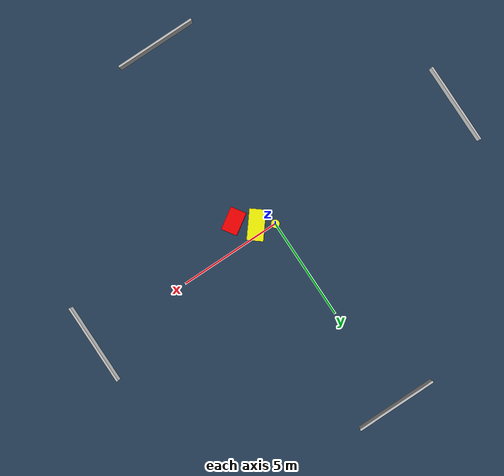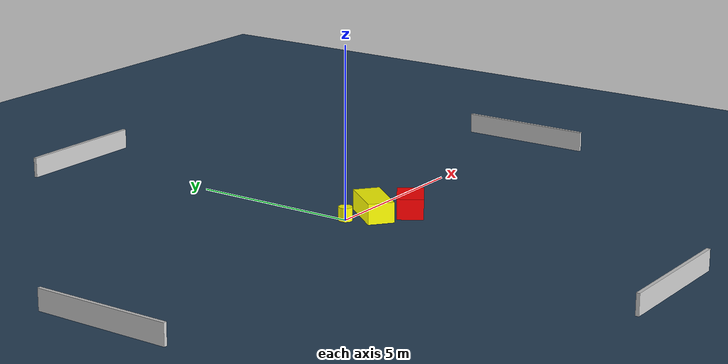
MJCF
<?xml version="1.0" ?>
<mujoco model="generated_environment">
  <option timestep="0.01" integrator="RK4" cone="elliptic"/>
  <default>
    <geom density="1"/>
  </default>
  <asset>
    <texture builtin="gradient" height="3072" name="skybox" rgb1="0.3 0.5 0.7" rgb2="0 0 0" type="skybox" width="512"/>
    <texture builtin="checker" height="300" name="groundplane" rgb1="0.2 0.3 0.4" rgb2="0.1 0.2 0.3" type="2d" width="300"/>
    <material name="groundplane" reflectance="0.2" texrepeat="5 5" texture="groundplane"/>
  </asset>
  <worldbody>
    <light dir="0 0 -1" directional="true" pos="0 0 1.5"/>
    <geom condim="3" friction="0.5 0.005 0.001" material="groundplane" name="floor" pos="0 0 0" size="0 0 0.05" type="plane"/>
    <body name="walls">
      <geom name="wall_1" condim="4" pos="-10.0 0.0 0.3" rgba="0.800000011920929 0.800000011920929 0.800000011920929 1.0" size="0.05 2.0 0.3" type="box"/>
      <geom name="wall_2" condim="4" pos="10.0 0.0 0.3" rgba="0.800000011920929 0.800000011920929 0.800000011920929 1.0" size="0.05 2.0 0.3" type="box"/>
      <geom name="wall_3" condim="4" pos="0.0 -10.0 0.3" rgba="0.800000011920929 0.800000011920929 0.800000011920929 1.0" size="2.0 0.05 0.3" type="box"/>
      <geom name="wall_4" condim="4" pos="0.0 10.0 0.3" rgba="0.800000011920929 0.800000011920929 0.800000011920929 1.0" size="2.0 0.05 0.3" type="box"/>
    </body>
    <body name="robot">
      <joint name="joint_x" type="slide" pos="0 0 0" axis="1 0 0"/>
      <joint name="joint_y" type="slide" pos="0 0 0" axis="0 1 0"/>
      <geom name="robot" type="cylinder" pos="0.0 0.0 0.2" size="0.2 0.2 0.0" mass="5.0" friction="1.0 0.005 0.0001" condim="4" rgba="1.0 1.0 0.0 1.0"/>
    </body>
    <body name="obstacle_1_movable">
      <geom name="obstacle_1_movable" condim="4" pos="0.7595031349351814 -0.4330498881126139 0.3" euler="0 0 51.10402737049134" friction="0.0 0.005 0.001" rgba="1.0 1.0 0.0 1.0" size="0.7327684418824323 0.384757979878917 0.3" type="box" mass="0.1"/>
      <joint type="free"/>
    </body>
    <body name="obstacle_2_static">
      <geom name="obstacle_2_static" condim="4" pos="1.5287903282638524 -1.1543851205255025 0.3" euler="0 0 33.09218990290001" friction="0.0 0.005 0.001" rgba="1.0 0.0 0.0 1.0" size="0.5647853551495738 0.3812154637643552 0.3" type="box"/>
    </body>
  </worldbody>
  <actuator>
    <motor name="actuator_x" joint="joint_x" gear="1" ctrlrange="-1 1"/>
    <motor name="actuator_y" joint="joint_y" gear="1" ctrlrange="-1 1"/>
  </actuator>
</mujoco>
